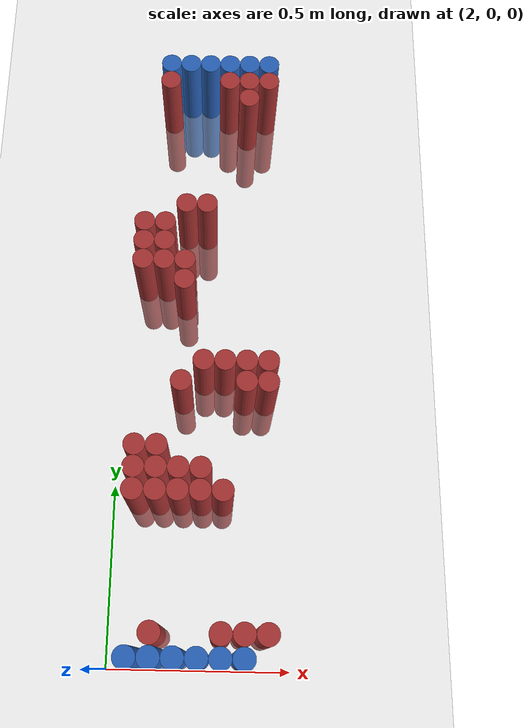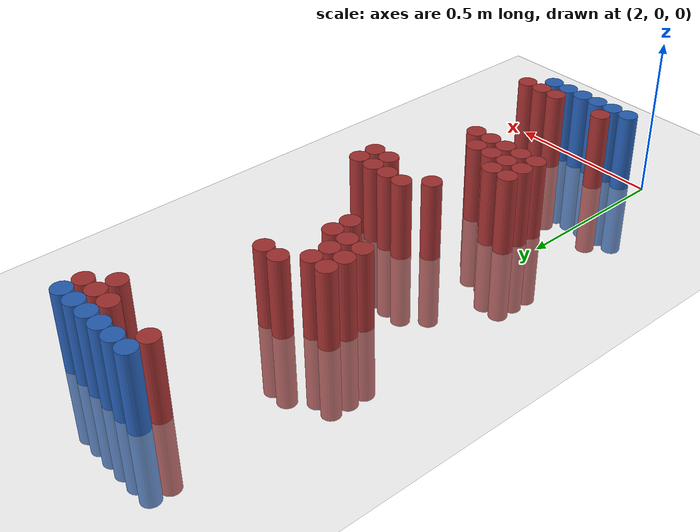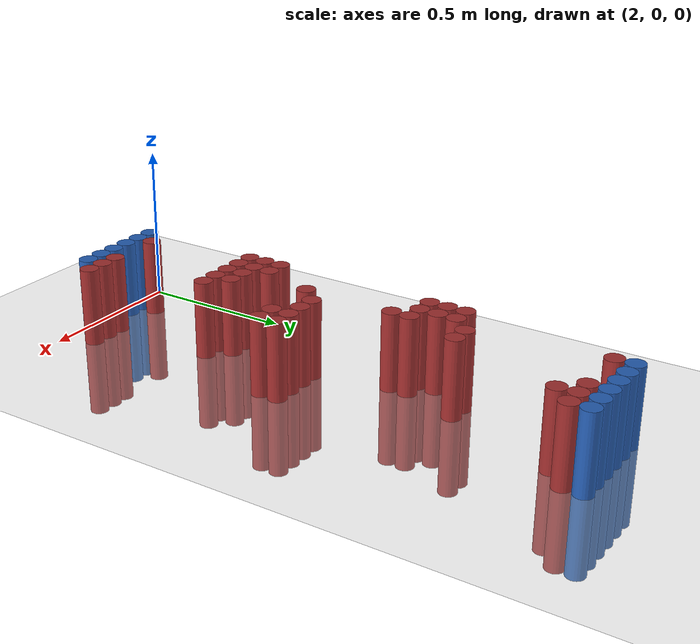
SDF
<sdf version="1.6">
 <world name="default">
  <model name="ground_plane">
   <static>1</static>
   <link name="link">
    <collision name="collision">
     <geometry><plane><normal>0 0 1</normal><size>100 100</size></plane></geometry>
     <surface><friction><ode><mu>100</mu><mu2>50</mu2></ode></friction></surface>
    </collision>
    <visual name="visual">
     <cast_shadows>0</cast_shadows>
     <geometry><plane><normal>0 0 1</normal><size>100 100</size></plane></geometry>
     <material>
      <script><uri>file://media/materials/scripts/gazebo.material</uri><name>Gazebo/Grey</name></script>
     </material>
    </visual>
   </link>
  </model>
  <model name="unit_cylinder_96">
   <static>1</static>
   <pose>2.130000 1.770000 0.000000 0.000000 0.000000 0.000000</pose>
   <link name="link">
    <inertial>
     <mass>1</mass>
     <inertia><ixx>0.145833</ixx><ixy>0</ixy><ixz>0</ixz><iyy>0.145833</iyy><iyz>0</iyz><izz>0.125</izz></inertia>
    </inertial>
    <collision name="collision">
     <geometry><cylinder><radius>0.030000</radius><length>0.5</length></cylinder></geometry>
    </collision>
    <visual name="visual">
     <geometry><cylinder><radius>0.030000</radius><length>0.5</length></cylinder></geometry>
     <material>
      <ambient>0.152000 0.379000 0.720000 1</ambient>
      <diffuse>0.152000 0.379000 0.720000 1</diffuse>
     </material>
     <material>
      <script><name>Gazebo/Grey</name><uri>file://media/materials/scripts/gazebo.material</uri></script>
     </material>
    </visual>
   </link>
  </model>
  <model name="unit_cylinder_97">
   <static>1</static>
   <pose>2.190000 1.770000 0.000000 0.000000 0.000000 0.000000</pose>
   <link name="link">
    <inertial>
     <mass>1</mass>
     <inertia><ixx>0.145833</ixx><ixy>0</ixy><ixz>0</ixz><iyy>0.145833</iyy><iyz>0</iyz><izz>0.125</izz></inertia>
    </inertial>
    <collision name="collision">
     <geometry><cylinder><radius>0.030000</radius><length>0.5</length></cylinder></geometry>
    </collision>
    <visual name="visual">
     <geometry><cylinder><radius>0.030000</radius><length>0.5</length></cylinder></geometry>
     <material>
      <ambient>0.152000 0.379000 0.720000 1</ambient>
      <diffuse>0.152000 0.379000 0.720000 1</diffuse>
     </material>
     <material>
      <script><name>Gazebo/Grey</name><uri>file://media/materials/scripts/gazebo.material</uri></script>
     </material>
    </visual>
   </link>
  </model>
  <model name="unit_cylinder_98">
   <static>1</static>
   <pose>2.250000 1.770000 0.000000 0.000000 0.000000 0.000000</pose>
   <link name="link">
    <inertial>
     <mass>1</mass>
     <inertia><ixx>0.145833</ixx><ixy>0</ixy><ixz>0</ixz><iyy>0.145833</iyy><iyz>0</iyz><izz>0.125</izz></inertia>
    </inertial>
    <collision name="collision">
     <geometry><cylinder><radius>0.030000</radius><length>0.5</length></cylinder></geometry>
    </collision>
    <visual name="visual">
     <geometry><cylinder><radius>0.030000</radius><length>0.5</length></cylinder></geometry>
     <material>
      <ambient>0.152000 0.379000 0.720000 1</ambient>
      <diffuse>0.152000 0.379000 0.720000 1</diffuse>
     </material>
     <material>
      <script><name>Gazebo/Grey</name><uri>file://media/materials/scripts/gazebo.material</uri></script>
     </material>
    </visual>
   </link>
  </model>
  <model name="unit_cylinder_99">
   <static>1</static>
   <pose>2.310000 1.770000 0.000000 0.000000 0.000000 0.000000</pose>
   <link name="link">
    <inertial>
     <mass>1</mass>
     <inertia><ixx>0.145833</ixx><ixy>0</ixy><ixz>0</ixz><iyy>0.145833</iyy><iyz>0</iyz><izz>0.125</izz></inertia>
    </inertial>
    <collision name="collision">
     <geometry><cylinder><radius>0.030000</radius><length>0.5</length></cylinder></geometry>
    </collision>
    <visual name="visual">
     <geometry><cylinder><radius>0.030000</radius><length>0.5</length></cylinder></geometry>
     <material>
      <ambient>0.152000 0.379000 0.720000 1</ambient>
      <diffuse>0.152000 0.379000 0.720000 1</diffuse>
     </material>
     <material>
      <script><name>Gazebo/Grey</name><uri>file://media/materials/scripts/gazebo.material</uri></script>
     </material>
    </visual>
   </link>
  </model>
  <model name="unit_cylinder_100">
   <static>1</static>
   <pose>2.370000 1.770000 0.000000 0.000000 0.000000 0.000000</pose>
   <link name="link">
    <inertial>
     <mass>1</mass>
     <inertia><ixx>0.145833</ixx><ixy>0</ixy><ixz>0</ixz><iyy>0.145833</iyy><iyz>0</iyz><izz>0.125</izz></inertia>
    </inertial>
    <collision name="collision">
     <geometry><cylinder><radius>0.030000</radius><length>0.5</length></cylinder></geometry>
    </collision>
    <visual name="visual">
     <geometry><cylinder><radius>0.030000</radius><length>0.5</length></cylinder></geometry>
     <material>
      <ambient>0.152000 0.379000 0.720000 1</ambient>
      <diffuse>0.152000 0.379000 0.720000 1</diffuse>
     </material>
     <material>
      <script><name>Gazebo/Grey</name><uri>file://media/materials/scripts/gazebo.material</uri></script>
     </material>
    </visual>
   </link>
  </model>
  <model name="unit_cylinder_101">
   <static>1</static>
   <pose>2.430000 1.770000 0.000000 0.000000 0.000000 0.000000</pose>
   <link name="link">
    <inertial>
     <mass>1</mass>
     <inertia><ixx>0.145833</ixx><ixy>0</ixy><ixz>0</ixz><iyy>0.145833</iyy><iyz>0</iyz><izz>0.125</izz></inertia>
    </inertial>
    <collision name="collision">
     <geometry><cylinder><radius>0.030000</radius><length>0.5</length></cylinder></geometry>
    </collision>
    <visual name="visual">
     <geometry><cylinder><radius>0.030000</radius><length>0.5</length></cylinder></geometry>
     <material>
      <ambient>0.152000 0.379000 0.720000 1</ambient>
      <diffuse>0.152000 0.379000 0.720000 1</diffuse>
     </material>
     <material>
      <script><name>Gazebo/Grey</name><uri>file://media/materials/scripts/gazebo.material</uri></script>
     </material>
    </visual>
   </link>
  </model>
  <model name="unit_cylinder_125">
   <static>1</static>
   <pose>2.130000 1.710000 0.000000 0.000000 0.000000 0.000000</pose>
   <link name="link">
    <inertial>
     <mass>1</mass>
     <inertia><ixx>0.145833</ixx><ixy>0</ixy><ixz>0</ixz><iyy>0.145833</iyy><iyz>0</iyz><izz>0.125</izz></inertia>
    </inertial>
    <collision name="collision">
     <geometry><cylinder><radius>0.030000</radius><length>0.5</length></cylinder></geometry>
    </collision>
    <visual name="visual">
     <geometry><cylinder><radius>0.030000</radius><length>0.5</length></cylinder></geometry>
     <material>
      <ambient>0.648000 0.192000 0.192000 1</ambient>
      <diffuse>0.648000 0.192000 0.192000 1</diffuse>
     </material>
     <material>
      <script><name>Gazebo/Grey</name><uri>file://media/materials/scripts/gazebo.material</uri></script>
     </material>
    </visual>
   </link>
  </model>
  <model name="unit_cylinder_126">
   <static>1</static>
   <pose>2.310000 1.710000 0.000000 0.000000 0.000000 0.000000</pose>
   <link name="link">
    <inertial>
     <mass>1</mass>
     <inertia><ixx>0.145833</ixx><ixy>0</ixy><ixz>0</ixz><iyy>0.145833</iyy><iyz>0</iyz><izz>0.125</izz></inertia>
    </inertial>
    <collision name="collision">
     <geometry><cylinder><radius>0.030000</radius><length>0.5</length></cylinder></geometry>
    </collision>
    <visual name="visual">
     <geometry><cylinder><radius>0.030000</radius><length>0.5</length></cylinder></geometry>
     <material>
      <ambient>0.648000 0.192000 0.192000 1</ambient>
      <diffuse>0.648000 0.192000 0.192000 1</diffuse>
     </material>
     <material>
      <script><name>Gazebo/Grey</name><uri>file://media/materials/scripts/gazebo.material</uri></script>
     </material>
    </visual>
   </link>
  </model>
  <model name="unit_cylinder_127">
   <static>1</static>
   <pose>2.370000 1.710000 0.000000 0.000000 0.000000 0.000000</pose>
   <link name="link">
    <inertial>
     <mass>1</mass>
     <inertia><ixx>0.145833</ixx><ixy>0</ixy><ixz>0</ixz><iyy>0.145833</iyy><iyz>0</iyz><izz>0.125</izz></inertia>
    </inertial>
    <collision name="collision">
     <geometry><cylinder><radius>0.030000</radius><length>0.5</length></cylinder></geometry>
    </collision>
    <visual name="visual">
     <geometry><cylinder><radius>0.030000</radius><length>0.5</length></cylinder></geometry>
     <material>
      <ambient>0.648000 0.192000 0.192000 1</ambient>
      <diffuse>0.648000 0.192000 0.192000 1</diffuse>
     </material>
     <material>
      <script><name>Gazebo/Grey</name><uri>file://media/materials/scripts/gazebo.material</uri></script>
     </material>
    </visual>
   </link>
  </model>
  <model name="unit_cylinder_128">
   <static>1</static>
   <pose>2.430000 1.710000 0.000000 0.000000 0.000000 0.000000</pose>
   <link name="link">
    <inertial>
     <mass>1</mass>
     <inertia><ixx>0.145833</ixx><ixy>0</ixy><ixz>0</ixz><iyy>0.145833</iyy><iyz>0</iyz><izz>0.125</izz></inertia>
    </inertial>
    <collision name="collision">
     <geometry><cylinder><radius>0.030000</radius><length>0.5</length></cylinder></geometry>
    </collision>
    <visual name="visual">
     <geometry><cylinder><radius>0.030000</radius><length>0.5</length></cylinder></geometry>
     <material>
      <ambient>0.648000 0.192000 0.192000 1</ambient>
      <diffuse>0.648000 0.192000 0.192000 1</diffuse>
     </material>
     <material>
      <script><name>Gazebo/Grey</name><uri>file://media/materials/scripts/gazebo.material</uri></script>
     </material>
    </visual>
   </link>
  </model>
  <model name="unit_cylinder_141">
   <static>1</static>
   <pose>2.370000 1.650000 0.000000 0.000000 0.000000 0.000000</pose>
   <link name="link">
    <inertial>
     <mass>1</mass>
     <inertia><ixx>0.145833</ixx><ixy>0</ixy><ixz>0</ixz><iyy>0.145833</iyy><iyz>0</iyz><izz>0.125</izz></inertia>
    </inertial>
    <collision name="collision">
     <geometry><cylinder><radius>0.030000</radius><length>0.5</length></cylinder></geometry>
    </collision>
    <visual name="visual">
     <geometry><cylinder><radius>0.030000</radius><length>0.5</length></cylinder></geometry>
     <material>
      <ambient>0.648000 0.192000 0.192000 1</ambient>
      <diffuse>0.648000 0.192000 0.192000 1</diffuse>
     </material>
     <material>
      <script><name>Gazebo/Grey</name><uri>file://media/materials/scripts/gazebo.material</uri></script>
     </material>
    </visual>
   </link>
  </model>
  <model name="unit_cylinder_174">
   <static>1</static>
   <pose>2.190000 1.290000 0.000000 0.000000 0.000000 0.000000</pose>
   <link name="link">
    <inertial>
     <mass>1</mass>
     <inertia><ixx>0.145833</ixx><ixy>0</ixy><ixz>0</ixz><iyy>0.145833</iyy><iyz>0</iyz><izz>0.125</izz></inertia>
    </inertial>
    <collision name="collision">
     <geometry><cylinder><radius>0.030000</radius><length>0.5</length></cylinder></geometry>
    </collision>
    <visual name="visual">
     <geometry><cylinder><radius>0.030000</radius><length>0.5</length></cylinder></geometry>
     <material>
      <ambient>0.648000 0.192000 0.192000 1</ambient>
      <diffuse>0.648000 0.192000 0.192000 1</diffuse>
     </material>
     <material>
      <script><name>Gazebo/Grey</name><uri>file://media/materials/scripts/gazebo.material</uri></script>
     </material>
    </visual>
   </link>
  </model>
  <model name="unit_cylinder_175">
   <static>1</static>
   <pose>2.250000 1.290000 0.000000 0.000000 0.000000 0.000000</pose>
   <link name="link">
    <inertial>
     <mass>1</mass>
     <inertia><ixx>0.145833</ixx><ixy>0</ixy><ixz>0</ixz><iyy>0.145833</iyy><iyz>0</iyz><izz>0.125</izz></inertia>
    </inertial>
    <collision name="collision">
     <geometry><cylinder><radius>0.030000</radius><length>0.5</length></cylinder></geometry>
    </collision>
    <visual name="visual">
     <geometry><cylinder><radius>0.030000</radius><length>0.5</length></cylinder></geometry>
     <material>
      <ambient>0.648000 0.192000 0.192000 1</ambient>
      <diffuse>0.648000 0.192000 0.192000 1</diffuse>
     </material>
     <material>
      <script><name>Gazebo/Grey</name><uri>file://media/materials/scripts/gazebo.material</uri></script>
     </material>
    </visual>
   </link>
  </model>
  <model name="unit_cylinder_178">
   <static>1</static>
   <pose>2.070000 1.230000 0.000000 0.000000 0.000000 0.000000</pose>
   <link name="link">
    <inertial>
     <mass>1</mass>
     <inertia><ixx>0.145833</ixx><ixy>0</ixy><ixz>0</ixz><iyy>0.145833</iyy><iyz>0</iyz><izz>0.125</izz></inertia>
    </inertial>
    <collision name="collision">
     <geometry><cylinder><radius>0.030000</radius><length>0.5</length></cylinder></geometry>
    </collision>
    <visual name="visual">
     <geometry><cylinder><radius>0.030000</radius><length>0.5</length></cylinder></geometry>
     <material>
      <ambient>0.648000 0.192000 0.192000 1</ambient>
      <diffuse>0.648000 0.192000 0.192000 1</diffuse>
     </material>
     <material>
      <script><name>Gazebo/Grey</name><uri>file://media/materials/scripts/gazebo.material</uri></script>
     </material>
    </visual>
   </link>
  </model>
  <model name="unit_cylinder_179">
   <static>1</static>
   <pose>2.130000 1.230000 0.000000 0.000000 0.000000 0.000000</pose>
   <link name="link">
    <inertial>
     <mass>1</mass>
     <inertia><ixx>0.145833</ixx><ixy>0</ixy><ixz>0</ixz><iyy>0.145833</iyy><iyz>0</iyz><izz>0.125</izz></inertia>
    </inertial>
    <collision name="collision">
     <geometry><cylinder><radius>0.030000</radius><length>0.5</length></cylinder></geometry>
    </collision>
    <visual name="visual">
     <geometry><cylinder><radius>0.030000</radius><length>0.5</length></cylinder></geometry>
     <material>
      <ambient>0.648000 0.192000 0.192000 1</ambient>
      <diffuse>0.648000 0.192000 0.192000 1</diffuse>
     </material>
     <material>
      <script><name>Gazebo/Grey</name><uri>file://media/materials/scripts/gazebo.material</uri></script>
     </material>
    </visual>
   </link>
  </model>
  <model name="unit_cylinder_185">
   <static>1</static>
   <pose>2.070000 1.170000 0.000000 0.000000 0.000000 0.000000</pose>
   <link name="link">
    <inertial>
     <mass>1</mass>
     <inertia><ixx>0.145833</ixx><ixy>0</ixy><ixz>0</ixz><iyy>0.145833</iyy><iyz>0</iyz><izz>0.125</izz></inertia>
    </inertial>
    <collision name="collision">
     <geometry><cylinder><radius>0.030000</radius><length>0.5</length></cylinder></geometry>
    </collision>
    <visual name="visual">
     <geometry><cylinder><radius>0.030000</radius><length>0.5</length></cylinder></geometry>
     <material>
      <ambient>0.648000 0.192000 0.192000 1</ambient>
      <diffuse>0.648000 0.192000 0.192000 1</diffuse>
     </material>
     <material>
      <script><name>Gazebo/Grey</name><uri>file://media/materials/scripts/gazebo.material</uri></script>
     </material>
    </visual>
   </link>
  </model>
  <model name="unit_cylinder_186">
   <static>1</static>
   <pose>2.130000 1.170000 0.000000 0.000000 0.000000 0.000000</pose>
   <link name="link">
    <inertial>
     <mass>1</mass>
     <inertia><ixx>0.145833</ixx><ixy>0</ixy><ixz>0</ixz><iyy>0.145833</iyy><iyz>0</iyz><izz>0.125</izz></inertia>
    </inertial>
    <collision name="collision">
     <geometry><cylinder><radius>0.030000</radius><length>0.5</length></cylinder></geometry>
    </collision>
    <visual name="visual">
     <geometry><cylinder><radius>0.030000</radius><length>0.5</length></cylinder></geometry>
     <material>
      <ambient>0.648000 0.192000 0.192000 1</ambient>
      <diffuse>0.648000 0.192000 0.192000 1</diffuse>
     </material>
     <material>
      <script><name>Gazebo/Grey</name><uri>file://media/materials/scripts/gazebo.material</uri></script>
     </material>
    </visual>
   </link>
  </model>
  <model name="unit_cylinder_190">
   <static>1</static>
   <pose>2.070000 1.110000 0.000000 0.000000 0.000000 0.000000</pose>
   <link name="link">
    <inertial>
     <mass>1</mass>
     <inertia><ixx>0.145833</ixx><ixy>0</ixy><ixz>0</ixz><iyy>0.145833</iyy><iyz>0</iyz><izz>0.125</izz></inertia>
    </inertial>
    <collision name="collision">
     <geometry><cylinder><radius>0.030000</radius><length>0.5</length></cylinder></geometry>
    </collision>
    <visual name="visual">
     <geometry><cylinder><radius>0.030000</radius><length>0.5</length></cylinder></geometry>
     <material>
      <ambient>0.648000 0.192000 0.192000 1</ambient>
      <diffuse>0.648000 0.192000 0.192000 1</diffuse>
     </material>
     <material>
      <script><name>Gazebo/Grey</name><uri>file://media/materials/scripts/gazebo.material</uri></script>
     </material>
    </visual>
   </link>
  </model>
  <model name="unit_cylinder_191">
   <static>1</static>
   <pose>2.130000 1.110000 0.000000 0.000000 0.000000 0.000000</pose>
   <link name="link">
    <inertial>
     <mass>1</mass>
     <inertia><ixx>0.145833</ixx><ixy>0</ixy><ixz>0</ixz><iyy>0.145833</iyy><iyz>0</iyz><izz>0.125</izz></inertia>
    </inertial>
    <collision name="collision">
     <geometry><cylinder><radius>0.030000</radius><length>0.5</length></cylinder></geometry>
    </collision>
    <visual name="visual">
     <geometry><cylinder><radius>0.030000</radius><length>0.5</length></cylinder></geometry>
     <material>
      <ambient>0.648000 0.192000 0.192000 1</ambient>
      <diffuse>0.648000 0.192000 0.192000 1</diffuse>
     </material>
     <material>
      <script><name>Gazebo/Grey</name><uri>file://media/materials/scripts/gazebo.material</uri></script>
     </material>
    </visual>
   </link>
  </model>
  <model name="unit_cylinder_192">
   <static>1</static>
   <pose>2.190000 1.110000 0.000000 0.000000 0.000000 0.000000</pose>
   <link name="link">
    <inertial>
     <mass>1</mass>
     <inertia><ixx>0.145833</ixx><ixy>0</ixy><ixz>0</ixz><iyy>0.145833</iyy><iyz>0</iyz><izz>0.125</izz></inertia>
    </inertial>
    <collision name="collision">
     <geometry><cylinder><radius>0.030000</radius><length>0.5</length></cylinder></geometry>
    </collision>
    <visual name="visual">
     <geometry><cylinder><radius>0.030000</radius><length>0.5</length></cylinder></geometry>
     <material>
      <ambient>0.648000 0.192000 0.192000 1</ambient>
      <diffuse>0.648000 0.192000 0.192000 1</diffuse>
     </material>
     <material>
      <script><name>Gazebo/Grey</name><uri>file://media/materials/scripts/gazebo.material</uri></script>
     </material>
    </visual>
   </link>
  </model>
  <model name="unit_cylinder_194">
   <static>1</static>
   <pose>2.190000 1.050000 0.000000 0.000000 0.000000 0.000000</pose>
   <link name="link">
    <inertial>
     <mass>1</mass>
     <inertia><ixx>0.145833</ixx><ixy>0</ixy><ixz>0</ixz><iyy>0.145833</iyy><iyz>0</iyz><izz>0.125</izz></inertia>
    </inertial>
    <collision name="collision">
     <geometry><cylinder><radius>0.030000</radius><length>0.5</length></cylinder></geometry>
    </collision>
    <visual name="visual">
     <geometry><cylinder><radius>0.030000</radius><length>0.5</length></cylinder></geometry>
     <material>
      <ambient>0.648000 0.192000 0.192000 1</ambient>
      <diffuse>0.648000 0.192000 0.192000 1</diffuse>
     </material>
     <material>
      <script><name>Gazebo/Grey</name><uri>file://media/materials/scripts/gazebo.material</uri></script>
     </material>
    </visual>
   </link>
  </model>
  <model name="unit_cylinder_196">
   <static>1</static>
   <pose>2.250000 0.810000 0.000000 0.000000 0.000000 0.000000</pose>
   <link name="link">
    <inertial>
     <mass>1</mass>
     <inertia><ixx>0.145833</ixx><ixy>0</ixy><ixz>0</ixz><iyy>0.145833</iyy><iyz>0</iyz><izz>0.125</izz></inertia>
    </inertial>
    <collision name="collision">
     <geometry><cylinder><radius>0.030000</radius><length>0.5</length></cylinder></geometry>
    </collision>
    <visual name="visual">
     <geometry><cylinder><radius>0.030000</radius><length>0.5</length></cylinder></geometry>
     <material>
      <ambient>0.648000 0.192000 0.192000 1</ambient>
      <diffuse>0.648000 0.192000 0.192000 1</diffuse>
     </material>
     <material>
      <script><name>Gazebo/Grey</name><uri>file://media/materials/scripts/gazebo.material</uri></script>
     </material>
    </visual>
   </link>
  </model>
  <model name="unit_cylinder_197">
   <static>1</static>
   <pose>2.310000 0.810000 0.000000 0.000000 0.000000 0.000000</pose>
   <link name="link">
    <inertial>
     <mass>1</mass>
     <inertia><ixx>0.145833</ixx><ixy>0</ixy><ixz>0</ixz><iyy>0.145833</iyy><iyz>0</iyz><izz>0.125</izz></inertia>
    </inertial>
    <collision name="collision">
     <geometry><cylinder><radius>0.030000</radius><length>0.5</length></cylinder></geometry>
    </collision>
    <visual name="visual">
     <geometry><cylinder><radius>0.030000</radius><length>0.5</length></cylinder></geometry>
     <material>
      <ambient>0.648000 0.192000 0.192000 1</ambient>
      <diffuse>0.648000 0.192000 0.192000 1</diffuse>
     </material>
     <material>
      <script><name>Gazebo/Grey</name><uri>file://media/materials/scripts/gazebo.material</uri></script>
     </material>
    </visual>
   </link>
  </model>
  <model name="unit_cylinder_198">
   <static>1</static>
   <pose>2.370000 0.810000 0.000000 0.000000 0.000000 0.000000</pose>
   <link name="link">
    <inertial>
     <mass>1</mass>
     <inertia><ixx>0.145833</ixx><ixy>0</ixy><ixz>0</ixz><iyy>0.145833</iyy><iyz>0</iyz><izz>0.125</izz></inertia>
    </inertial>
    <collision name="collision">
     <geometry><cylinder><radius>0.030000</radius><length>0.5</length></cylinder></geometry>
    </collision>
    <visual name="visual">
     <geometry><cylinder><radius>0.030000</radius><length>0.5</length></cylinder></geometry>
     <material>
      <ambient>0.648000 0.192000 0.192000 1</ambient>
      <diffuse>0.648000 0.192000 0.192000 1</diffuse>
     </material>
     <material>
      <script><name>Gazebo/Grey</name><uri>file://media/materials/scripts/gazebo.material</uri></script>
     </material>
    </visual>
   </link>
  </model>
  <model name="unit_cylinder_199">
   <static>1</static>
   <pose>2.430000 0.810000 0.000000 0.000000 0.000000 0.000000</pose>
   <link name="link">
    <inertial>
     <mass>1</mass>
     <inertia><ixx>0.145833</ixx><ixy>0</ixy><ixz>0</ixz><iyy>0.145833</iyy><iyz>0</iyz><izz>0.125</izz></inertia>
    </inertial>
    <collision name="collision">
     <geometry><cylinder><radius>0.030000</radius><length>0.5</length></cylinder></geometry>
    </collision>
    <visual name="visual">
     <geometry><cylinder><radius>0.030000</radius><length>0.5</length></cylinder></geometry>
     <material>
      <ambient>0.648000 0.192000 0.192000 1</ambient>
      <diffuse>0.648000 0.192000 0.192000 1</diffuse>
     </material>
     <material>
      <script><name>Gazebo/Grey</name><uri>file://media/materials/scripts/gazebo.material</uri></script>
     </material>
    </visual>
   </link>
  </model>
  <model name="unit_cylinder_201">
   <static>1</static>
   <pose>2.190000 0.750000 0.000000 0.000000 0.000000 0.000000</pose>
   <link name="link">
    <inertial>
     <mass>1</mass>
     <inertia><ixx>0.145833</ixx><ixy>0</ixy><ixz>0</ixz><iyy>0.145833</iyy><iyz>0</iyz><izz>0.125</izz></inertia>
    </inertial>
    <collision name="collision">
     <geometry><cylinder><radius>0.030000</radius><length>0.5</length></cylinder></geometry>
    </collision>
    <visual name="visual">
     <geometry><cylinder><radius>0.030000</radius><length>0.5</length></cylinder></geometry>
     <material>
      <ambient>0.648000 0.192000 0.192000 1</ambient>
      <diffuse>0.648000 0.192000 0.192000 1</diffuse>
     </material>
     <material>
      <script><name>Gazebo/Grey</name><uri>file://media/materials/scripts/gazebo.material</uri></script>
     </material>
    </visual>
   </link>
  </model>
  <model name="unit_cylinder_202">
   <static>1</static>
   <pose>2.370000 0.750000 0.000000 0.000000 0.000000 0.000000</pose>
   <link name="link">
    <inertial>
     <mass>1</mass>
     <inertia><ixx>0.145833</ixx><ixy>0</ixy><ixz>0</ixz><iyy>0.145833</iyy><iyz>0</iyz><izz>0.125</izz></inertia>
    </inertial>
    <collision name="collision">
     <geometry><cylinder><radius>0.030000</radius><length>0.5</length></cylinder></geometry>
    </collision>
    <visual name="visual">
     <geometry><cylinder><radius>0.030000</radius><length>0.5</length></cylinder></geometry>
     <material>
      <ambient>0.648000 0.192000 0.192000 1</ambient>
      <diffuse>0.648000 0.192000 0.192000 1</diffuse>
     </material>
     <material>
      <script><name>Gazebo/Grey</name><uri>file://media/materials/scripts/gazebo.material</uri></script>
     </material>
    </visual>
   </link>
  </model>
  <model name="unit_cylinder_203">
   <static>1</static>
   <pose>2.430000 0.750000 0.000000 0.000000 0.000000 0.000000</pose>
   <link name="link">
    <inertial>
     <mass>1</mass>
     <inertia><ixx>0.145833</ixx><ixy>0</ixy><ixz>0</ixz><iyy>0.145833</iyy><iyz>0</iyz><izz>0.125</izz></inertia>
    </inertial>
    <collision name="collision">
     <geometry><cylinder><radius>0.030000</radius><length>0.5</length></cylinder></geometry>
    </collision>
    <visual name="visual">
     <geometry><cylinder><radius>0.030000</radius><length>0.5</length></cylinder></geometry>
     <material>
      <ambient>0.648000 0.192000 0.192000 1</ambient>
      <diffuse>0.648000 0.192000 0.192000 1</diffuse>
     </material>
     <material>
      <script><name>Gazebo/Grey</name><uri>file://media/materials/scripts/gazebo.material</uri></script>
     </material>
    </visual>
   </link>
  </model>
  <model name="unit_cylinder_212">
   <static>1</static>
   <pose>2.070000 0.570000 0.000000 0.000000 0.000000 0.000000</pose>
   <link name="link">
    <inertial>
     <mass>1</mass>
     <inertia><ixx>0.145833</ixx><ixy>0</ixy><ixz>0</ixz><iyy>0.145833</iyy><iyz>0</iyz><izz>0.125</izz></inertia>
    </inertial>
    <collision name="collision">
     <geometry><cylinder><radius>0.030000</radius><length>0.5</length></cylinder></geometry>
    </collision>
    <visual name="visual">
     <geometry><cylinder><radius>0.030000</radius><length>0.5</length></cylinder></geometry>
     <material>
      <ambient>0.648000 0.192000 0.192000 1</ambient>
      <diffuse>0.648000 0.192000 0.192000 1</diffuse>
     </material>
     <material>
      <script><name>Gazebo/Grey</name><uri>file://media/materials/scripts/gazebo.material</uri></script>
     </material>
    </visual>
   </link>
  </model>
  <model name="unit_cylinder_213">
   <static>1</static>
   <pose>2.130000 0.570000 0.000000 0.000000 0.000000 0.000000</pose>
   <link name="link">
    <inertial>
     <mass>1</mass>
     <inertia><ixx>0.145833</ixx><ixy>0</ixy><ixz>0</ixz><iyy>0.145833</iyy><iyz>0</iyz><izz>0.125</izz></inertia>
    </inertial>
    <collision name="collision">
     <geometry><cylinder><radius>0.030000</radius><length>0.5</length></cylinder></geometry>
    </collision>
    <visual name="visual">
     <geometry><cylinder><radius>0.030000</radius><length>0.5</length></cylinder></geometry>
     <material>
      <ambient>0.648000 0.192000 0.192000 1</ambient>
      <diffuse>0.648000 0.192000 0.192000 1</diffuse>
     </material>
     <material>
      <script><name>Gazebo/Grey</name><uri>file://media/materials/scripts/gazebo.material</uri></script>
     </material>
    </visual>
   </link>
  </model>
  <model name="unit_cylinder_216">
   <static>1</static>
   <pose>2.070000 0.510000 0.000000 0.000000 0.000000 0.000000</pose>
   <link name="link">
    <inertial>
     <mass>1</mass>
     <inertia><ixx>0.145833</ixx><ixy>0</ixy><ixz>0</ixz><iyy>0.145833</iyy><iyz>0</iyz><izz>0.125</izz></inertia>
    </inertial>
    <collision name="collision">
     <geometry><cylinder><radius>0.030000</radius><length>0.5</length></cylinder></geometry>
    </collision>
    <visual name="visual">
     <geometry><cylinder><radius>0.030000</radius><length>0.5</length></cylinder></geometry>
     <material>
      <ambient>0.648000 0.192000 0.192000 1</ambient>
      <diffuse>0.648000 0.192000 0.192000 1</diffuse>
     </material>
     <material>
      <script><name>Gazebo/Grey</name><uri>file://media/materials/scripts/gazebo.material</uri></script>
     </material>
    </visual>
   </link>
  </model>
  <model name="unit_cylinder_217">
   <static>1</static>
   <pose>2.130000 0.510000 0.000000 0.000000 0.000000 0.000000</pose>
   <link name="link">
    <inertial>
     <mass>1</mass>
     <inertia><ixx>0.145833</ixx><ixy>0</ixy><ixz>0</ixz><iyy>0.145833</iyy><iyz>0</iyz><izz>0.125</izz></inertia>
    </inertial>
    <collision name="collision">
     <geometry><cylinder><radius>0.030000</radius><length>0.5</length></cylinder></geometry>
    </collision>
    <visual name="visual">
     <geometry><cylinder><radius>0.030000</radius><length>0.5</length></cylinder></geometry>
     <material>
      <ambient>0.648000 0.192000 0.192000 1</ambient>
      <diffuse>0.648000 0.192000 0.192000 1</diffuse>
     </material>
     <material>
      <script><name>Gazebo/Grey</name><uri>file://media/materials/scripts/gazebo.material</uri></script>
     </material>
    </visual>
   </link>
  </model>
  <model name="unit_cylinder_218">
   <static>1</static>
   <pose>2.190000 0.510000 0.000000 0.000000 0.000000 0.000000</pose>
   <link name="link">
    <inertial>
     <mass>1</mass>
     <inertia><ixx>0.145833</ixx><ixy>0</ixy><ixz>0</ixz><iyy>0.145833</iyy><iyz>0</iyz><izz>0.125</izz></inertia>
    </inertial>
    <collision name="collision">
     <geometry><cylinder><radius>0.030000</radius><length>0.5</length></cylinder></geometry>
    </collision>
    <visual name="visual">
     <geometry><cylinder><radius>0.030000</radius><length>0.5</length></cylinder></geometry>
     <material>
      <ambient>0.648000 0.192000 0.192000 1</ambient>
      <diffuse>0.648000 0.192000 0.192000 1</diffuse>
     </material>
     <material>
      <script><name>Gazebo/Grey</name><uri>file://media/materials/scripts/gazebo.material</uri></script>
     </material>
    </visual>
   </link>
  </model>
  <model name="unit_cylinder_219">
   <static>1</static>
   <pose>2.250000 0.510000 0.000000 0.000000 0.000000 0.000000</pose>
   <link name="link">
    <inertial>
     <mass>1</mass>
     <inertia><ixx>0.145833</ixx><ixy>0</ixy><ixz>0</ixz><iyy>0.145833</iyy><iyz>0</iyz><izz>0.125</izz></inertia>
    </inertial>
    <collision name="collision">
     <geometry><cylinder><radius>0.030000</radius><length>0.5</length></cylinder></geometry>
    </collision>
    <visual name="visual">
     <geometry><cylinder><radius>0.030000</radius><length>0.5</length></cylinder></geometry>
     <material>
      <ambient>0.648000 0.192000 0.192000 1</ambient>
      <diffuse>0.648000 0.192000 0.192000 1</diffuse>
     </material>
     <material>
      <script><name>Gazebo/Grey</name><uri>file://media/materials/scripts/gazebo.material</uri></script>
     </material>
    </visual>
   </link>
  </model>
  <model name="unit_cylinder_221">
   <static>1</static>
   <pose>2.070000 0.450000 0.000000 0.000000 0.000000 0.000000</pose>
   <link name="link">
    <inertial>
     <mass>1</mass>
     <inertia><ixx>0.145833</ixx><ixy>0</ixy><ixz>0</ixz><iyy>0.145833</iyy><iyz>0</iyz><izz>0.125</izz></inertia>
    </inertial>
    <collision name="collision">
     <geometry><cylinder><radius>0.030000</radius><length>0.5</length></cylinder></geometry>
    </collision>
    <visual name="visual">
     <geometry><cylinder><radius>0.030000</radius><length>0.5</length></cylinder></geometry>
     <material>
      <ambient>0.648000 0.192000 0.192000 1</ambient>
      <diffuse>0.648000 0.192000 0.192000 1</diffuse>
     </material>
     <material>
      <script><name>Gazebo/Grey</name><uri>file://media/materials/scripts/gazebo.material</uri></script>
     </material>
    </visual>
   </link>
  </model>
  <model name="unit_cylinder_222">
   <static>1</static>
   <pose>2.130000 0.450000 0.000000 0.000000 0.000000 0.000000</pose>
   <link name="link">
    <inertial>
     <mass>1</mass>
     <inertia><ixx>0.145833</ixx><ixy>0</ixy><ixz>0</ixz><iyy>0.145833</iyy><iyz>0</iyz><izz>0.125</izz></inertia>
    </inertial>
    <collision name="collision">
     <geometry><cylinder><radius>0.030000</radius><length>0.5</length></cylinder></geometry>
    </collision>
    <visual name="visual">
     <geometry><cylinder><radius>0.030000</radius><length>0.5</length></cylinder></geometry>
     <material>
      <ambient>0.648000 0.192000 0.192000 1</ambient>
      <diffuse>0.648000 0.192000 0.192000 1</diffuse>
     </material>
     <material>
      <script><name>Gazebo/Grey</name><uri>file://media/materials/scripts/gazebo.material</uri></script>
     </material>
    </visual>
   </link>
  </model>
  <model name="unit_cylinder_223">
   <static>1</static>
   <pose>2.190000 0.450000 0.000000 0.000000 0.000000 0.000000</pose>
   <link name="link">
    <inertial>
     <mass>1</mass>
     <inertia><ixx>0.145833</ixx><ixy>0</ixy><ixz>0</ixz><iyy>0.145833</iyy><iyz>0</iyz><izz>0.125</izz></inertia>
    </inertial>
    <collision name="collision">
     <geometry><cylinder><radius>0.030000</radius><length>0.5</length></cylinder></geometry>
    </collision>
    <visual name="visual">
     <geometry><cylinder><radius>0.030000</radius><length>0.5</length></cylinder></geometry>
     <material>
      <ambient>0.648000 0.192000 0.192000 1</ambient>
      <diffuse>0.648000 0.192000 0.192000 1</diffuse>
     </material>
     <material>
      <script><name>Gazebo/Grey</name><uri>file://media/materials/scripts/gazebo.material</uri></script>
     </material>
    </visual>
   </link>
  </model>
  <model name="unit_cylinder_224">
   <static>1</static>
   <pose>2.250000 0.450000 0.000000 0.000000 0.000000 0.000000</pose>
   <link name="link">
    <inertial>
     <mass>1</mass>
     <inertia><ixx>0.145833</ixx><ixy>0</ixy><ixz>0</ixz><iyy>0.145833</iyy><iyz>0</iyz><izz>0.125</izz></inertia>
    </inertial>
    <collision name="collision">
     <geometry><cylinder><radius>0.030000</radius><length>0.5</length></cylinder></geometry>
    </collision>
    <visual name="visual">
     <geometry><cylinder><radius>0.030000</radius><length>0.5</length></cylinder></geometry>
     <material>
      <ambient>0.648000 0.192000 0.192000 1</ambient>
      <diffuse>0.648000 0.192000 0.192000 1</diffuse>
     </material>
     <material>
      <script><name>Gazebo/Grey</name><uri>file://media/materials/scripts/gazebo.material</uri></script>
     </material>
    </visual>
   </link>
  </model>
  <model name="unit_cylinder_225">
   <static>1</static>
   <pose>2.310000 0.450000 0.000000 0.000000 0.000000 0.000000</pose>
   <link name="link">
    <inertial>
     <mass>1</mass>
     <inertia><ixx>0.145833</ixx><ixy>0</ixy><ixz>0</ixz><iyy>0.145833</iyy><iyz>0</iyz><izz>0.125</izz></inertia>
    </inertial>
    <collision name="collision">
     <geometry><cylinder><radius>0.030000</radius><length>0.5</length></cylinder></geometry>
    </collision>
    <visual name="visual">
     <geometry><cylinder><radius>0.030000</radius><length>0.5</length></cylinder></geometry>
     <material>
      <ambient>0.648000 0.192000 0.192000 1</ambient>
      <diffuse>0.648000 0.192000 0.192000 1</diffuse>
     </material>
     <material>
      <script><name>Gazebo/Grey</name><uri>file://media/materials/scripts/gazebo.material</uri></script>
     </material>
    </visual>
   </link>
  </model>
  <model name="unit_cylinder_245">
   <static>1</static>
   <pose>2.130000 0.090000 0.000000 0.000000 0.000000 0.000000</pose>
   <link name="link">
    <inertial>
     <mass>1</mass>
     <inertia><ixx>0.145833</ixx><ixy>0</ixy><ixz>0</ixz><iyy>0.145833</iyy><iyz>0</iyz><izz>0.125</izz></inertia>
    </inertial>
    <collision name="collision">
     <geometry><cylinder><radius>0.030000</radius><length>0.5</length></cylinder></geometry>
    </collision>
    <visual name="visual">
     <geometry><cylinder><radius>0.030000</radius><length>0.5</length></cylinder></geometry>
     <material>
      <ambient>0.648000 0.192000 0.192000 1</ambient>
      <diffuse>0.648000 0.192000 0.192000 1</diffuse>
     </material>
     <material>
      <script><name>Gazebo/Grey</name><uri>file://media/materials/scripts/gazebo.material</uri></script>
     </material>
    </visual>
   </link>
  </model>
  <model name="unit_cylinder_246">
   <static>1</static>
   <pose>2.310000 0.090000 0.000000 0.000000 0.000000 0.000000</pose>
   <link name="link">
    <inertial>
     <mass>1</mass>
     <inertia><ixx>0.145833</ixx><ixy>0</ixy><ixz>0</ixz><iyy>0.145833</iyy><iyz>0</iyz><izz>0.125</izz></inertia>
    </inertial>
    <collision name="collision">
     <geometry><cylinder><radius>0.030000</radius><length>0.5</length></cylinder></geometry>
    </collision>
    <visual name="visual">
     <geometry><cylinder><radius>0.030000</radius><length>0.5</length></cylinder></geometry>
     <material>
      <ambient>0.648000 0.192000 0.192000 1</ambient>
      <diffuse>0.648000 0.192000 0.192000 1</diffuse>
     </material>
     <material>
      <script><name>Gazebo/Grey</name><uri>file://media/materials/scripts/gazebo.material</uri></script>
     </material>
    </visual>
   </link>
  </model>
  <model name="unit_cylinder_247">
   <static>1</static>
   <pose>2.370000 0.090000 0.000000 0.000000 0.000000 0.000000</pose>
   <link name="link">
    <inertial>
     <mass>1</mass>
     <inertia><ixx>0.145833</ixx><ixy>0</ixy><ixz>0</ixz><iyy>0.145833</iyy><iyz>0</iyz><izz>0.125</izz></inertia>
    </inertial>
    <collision name="collision">
     <geometry><cylinder><radius>0.030000</radius><length>0.5</length></cylinder></geometry>
    </collision>
    <visual name="visual">
     <geometry><cylinder><radius>0.030000</radius><length>0.5</length></cylinder></geometry>
     <material>
      <ambient>0.648000 0.192000 0.192000 1</ambient>
      <diffuse>0.648000 0.192000 0.192000 1</diffuse>
     </material>
     <material>
      <script><name>Gazebo/Grey</name><uri>file://media/materials/scripts/gazebo.material</uri></script>
     </material>
    </visual>
   </link>
  </model>
  <model name="unit_cylinder_248">
   <static>1</static>
   <pose>2.430000 0.090000 0.000000 0.000000 0.000000 0.000000</pose>
   <link name="link">
    <inertial>
     <mass>1</mass>
     <inertia><ixx>0.145833</ixx><ixy>0</ixy><ixz>0</ixz><iyy>0.145833</iyy><iyz>0</iyz><izz>0.125</izz></inertia>
    </inertial>
    <collision name="collision">
     <geometry><cylinder><radius>0.030000</radius><length>0.5</length></cylinder></geometry>
    </collision>
    <visual name="visual">
     <geometry><cylinder><radius>0.030000</radius><length>0.5</length></cylinder></geometry>
     <material>
      <ambient>0.648000 0.192000 0.192000 1</ambient>
      <diffuse>0.648000 0.192000 0.192000 1</diffuse>
     </material>
     <material>
      <script><name>Gazebo/Grey</name><uri>file://media/materials/scripts/gazebo.material</uri></script>
     </material>
    </visual>
   </link>
  </model>
  <model name="unit_cylinder_260">
   <static>1</static>
   <pose>2.070000 0.030000 0.000000 0.000000 0.000000 0.000000</pose>
   <link name="link">
    <inertial>
     <mass>1</mass>
     <inertia><ixx>0.145833</ixx><ixy>0</ixy><ixz>0</ixz><iyy>0.145833</iyy><iyz>0</iyz><izz>0.125</izz></inertia>
    </inertial>
    <collision name="collision">
     <geometry><cylinder><radius>0.030000</radius><length>0.5</length></cylinder></geometry>
    </collision>
    <visual name="visual">
     <geometry><cylinder><radius>0.030000</radius><length>0.5</length></cylinder></geometry>
     <material>
      <ambient>0.152000 0.379000 0.720000 1</ambient>
      <diffuse>0.152000 0.379000 0.720000 1</diffuse>
     </material>
     <material>
      <script><name>Gazebo/Grey</name><uri>file://media/materials/scripts/gazebo.material</uri></script>
     </material>
    </visual>
   </link>
  </model>
  <model name="unit_cylinder_261">
   <static>1</static>
   <pose>2.130000 0.030000 0.000000 0.000000 0.000000 0.000000</pose>
   <link name="link">
    <inertial>
     <mass>1</mass>
     <inertia><ixx>0.145833</ixx><ixy>0</ixy><ixz>0</ixz><iyy>0.145833</iyy><iyz>0</iyz><izz>0.125</izz></inertia>
    </inertial>
    <collision name="collision">
     <geometry><cylinder><radius>0.030000</radius><length>0.5</length></cylinder></geometry>
    </collision>
    <visual name="visual">
     <geometry><cylinder><radius>0.030000</radius><length>0.5</length></cylinder></geometry>
     <material>
      <ambient>0.152000 0.379000 0.720000 1</ambient>
      <diffuse>0.152000 0.379000 0.720000 1</diffuse>
     </material>
     <material>
      <script><name>Gazebo/Grey</name><uri>file://media/materials/scripts/gazebo.material</uri></script>
     </material>
    </visual>
   </link>
  </model>
  <model name="unit_cylinder_262">
   <static>1</static>
   <pose>2.190000 0.030000 0.000000 0.000000 0.000000 0.000000</pose>
   <link name="link">
    <inertial>
     <mass>1</mass>
     <inertia><ixx>0.145833</ixx><ixy>0</ixy><ixz>0</ixz><iyy>0.145833</iyy><iyz>0</iyz><izz>0.125</izz></inertia>
    </inertial>
    <collision name="collision">
     <geometry><cylinder><radius>0.030000</radius><length>0.5</length></cylinder></geometry>
    </collision>
    <visual name="visual">
     <geometry><cylinder><radius>0.030000</radius><length>0.5</length></cylinder></geometry>
     <material>
      <ambient>0.152000 0.379000 0.720000 1</ambient>
      <diffuse>0.152000 0.379000 0.720000 1</diffuse>
     </material>
     <material>
      <script><name>Gazebo/Grey</name><uri>file://media/materials/scripts/gazebo.material</uri></script>
     </material>
    </visual>
   </link>
  </model>
  <model name="unit_cylinder_263">
   <static>1</static>
   <pose>2.250000 0.030000 0.000000 0.000000 0.000000 0.000000</pose>
   <link name="link">
    <inertial>
     <mass>1</mass>
     <inertia><ixx>0.145833</ixx><ixy>0</ixy><ixz>0</ixz><iyy>0.145833</iyy><iyz>0</iyz><izz>0.125</izz></inertia>
    </inertial>
    <collision name="collision">
     <geometry><cylinder><radius>0.030000</radius><length>0.5</length></cylinder></geometry>
    </collision>
    <visual name="visual">
     <geometry><cylinder><radius>0.030000</radius><length>0.5</length></cylinder></geometry>
     <material>
      <ambient>0.152000 0.379000 0.720000 1</ambient>
      <diffuse>0.152000 0.379000 0.720000 1</diffuse>
     </material>
     <material>
      <script><name>Gazebo/Grey</name><uri>file://media/materials/scripts/gazebo.material</uri></script>
     </material>
    </visual>
   </link>
  </model>
  <model name="unit_cylinder_264">
   <static>1</static>
   <pose>2.310000 0.030000 0.000000 0.000000 0.000000 0.000000</pose>
   <link name="link">
    <inertial>
     <mass>1</mass>
     <inertia><ixx>0.145833</ixx><ixy>0</ixy><ixz>0</ixz><iyy>0.145833</iyy><iyz>0</iyz><izz>0.125</izz></inertia>
    </inertial>
    <collision name="collision">
     <geometry><cylinder><radius>0.030000</radius><length>0.5</length></cylinder></geometry>
    </collision>
    <visual name="visual">
     <geometry><cylinder><radius>0.030000</radius><length>0.5</length></cylinder></geometry>
     <material>
      <ambient>0.152000 0.379000 0.720000 1</ambient>
      <diffuse>0.152000 0.379000 0.720000 1</diffuse>
     </material>
     <material>
      <script><name>Gazebo/Grey</name><uri>file://media/materials/scripts/gazebo.material</uri></script>
     </material>
    </visual>
   </link>
  </model>
  <model name="unit_cylinder_265">
   <static>1</static>
   <pose>2.370000 0.030000 0.000000 0.000000 0.000000 0.000000</pose>
   <link name="link">
    <inertial>
     <mass>1</mass>
     <inertia><ixx>0.145833</ixx><ixy>0</ixy><ixz>0</ixz><iyy>0.145833</iyy><iyz>0</iyz><izz>0.125</izz></inertia>
    </inertial>
    <collision name="collision">
     <geometry><cylinder><radius>0.030000</radius><length>0.5</length></cylinder></geometry>
    </collision>
    <visual name="visual">
     <geometry><cylinder><radius>0.030000</radius><length>0.5</length></cylinder></geometry>
     <material>
      <ambient>0.152000 0.379000 0.720000 1</ambient>
      <diffuse>0.152000 0.379000 0.720000 1</diffuse>
     </material>
     <material>
      <script><name>Gazebo/Grey</name><uri>file://media/materials/scripts/gazebo.material</uri></script>
     </material>
    </visual>
   </link>
  </model>
 </world>
</sdf>
